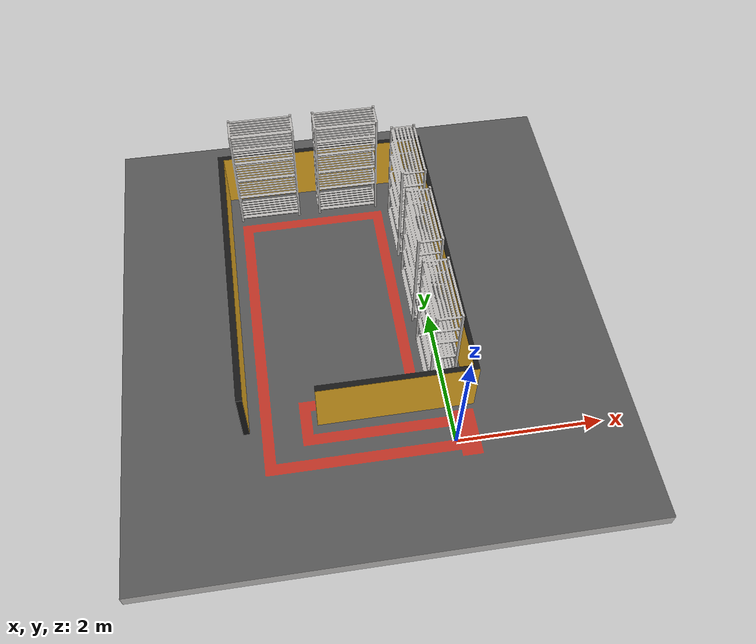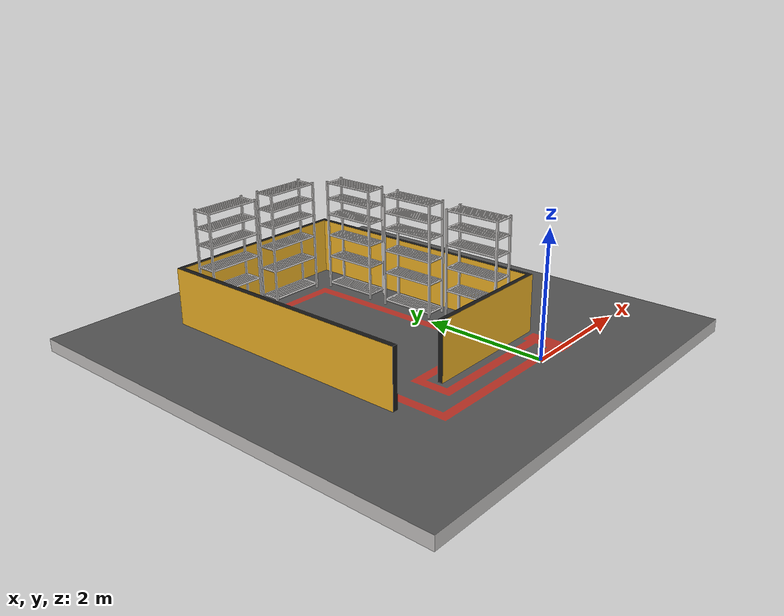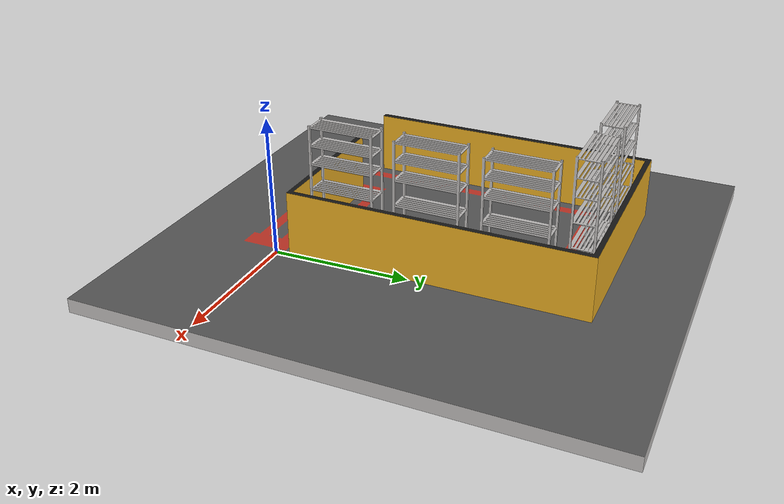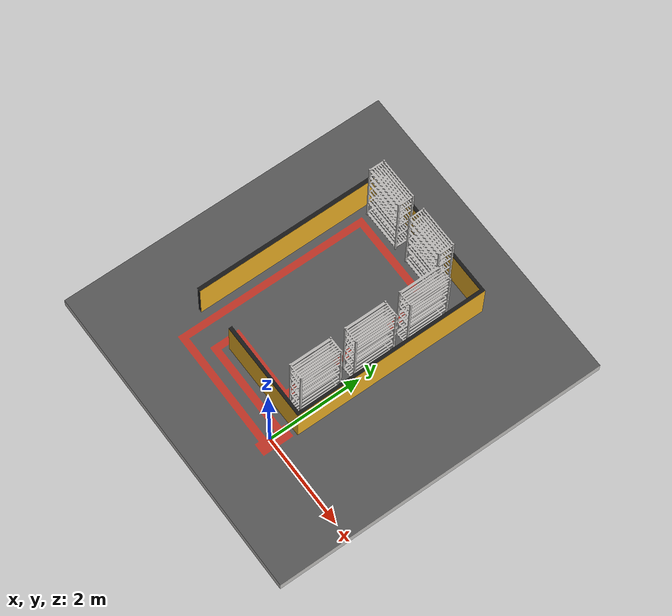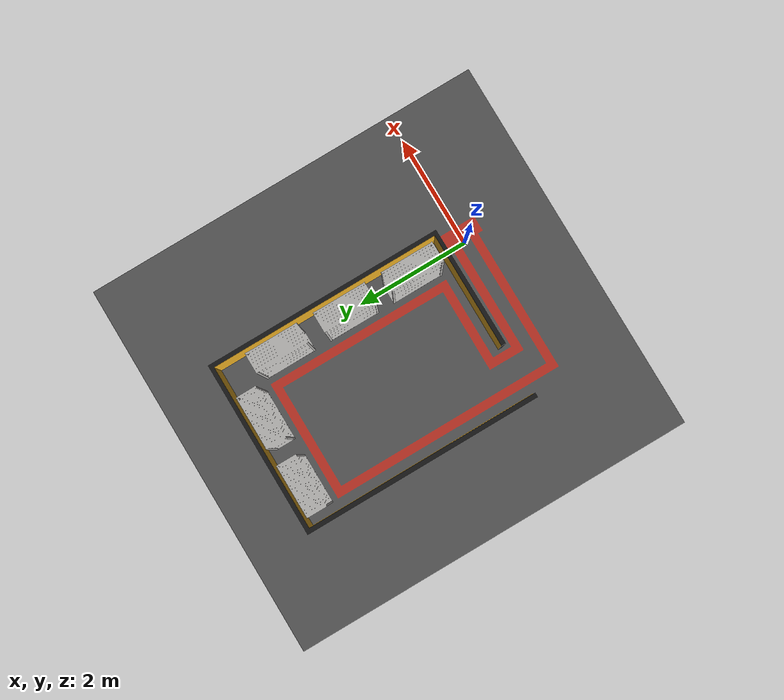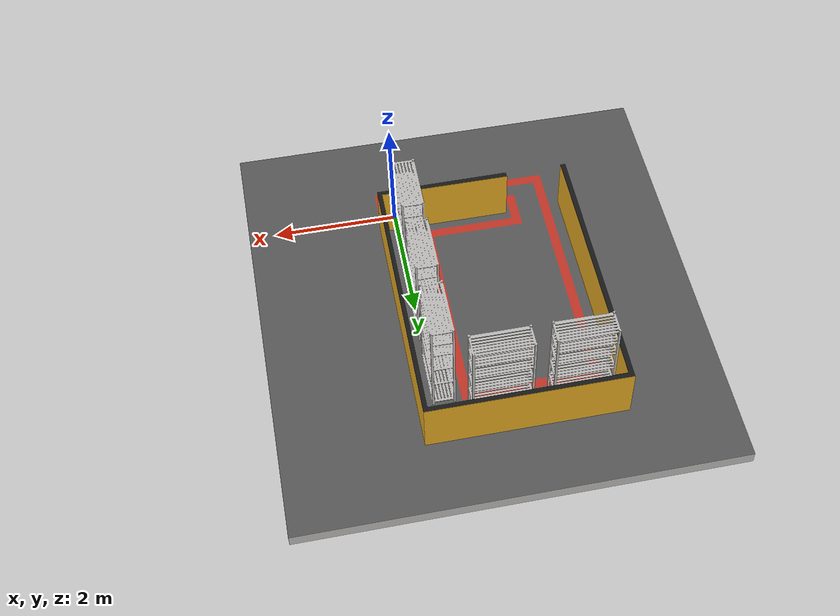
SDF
<sdf version='1.11'>
  <world name="default">
    <!-- Plugin for simulating physics -->
    <plugin
      filename="gz-sim-physics-system"
      name="gz::sim::systems::Physics">
    </plugin>

    <!-- Plugin for handling user commands -->
    <plugin
      filename="gz-sim-user-commands-system"
      name="gz::sim::systems::UserCommands">
    </plugin>

    <!-- Plugin for broadcasting scene updates -->
    <plugin
      filename="gz-sim-scene-broadcaster-system"
      name="gz::sim::systems::SceneBroadcaster">
    </plugin>

    <!-- Plugin for handling sensors like the LIDAR -->
    <plugin
      filename="gz-sim-sensors-system"
      name="gz::sim::systems::Sensors">
      <render_engine>ogre2</render_engine>
    </plugin>

    <!-- Plugin for IMU -->
    <plugin filename="gz-sim-imu-system"
      name="gz::sim::systems::Imu">
    </plugin>

    <scene>
      <ambient>0.5 0.5 0.5 1</ambient>
      <background>0.5 0.5 0.5 1</background>
    </scene>

    <model name='worldEternal'>
      <static>true</static>
      <link name='arena'>
        <collision name='arena_collision_collision'>
          <pose>-0.975 2.075 0 -1.59 0 0</pose>
          <geometry>
            <mesh>
              <scale>0.001 0.001 0.001</scale>
              <uri>meshes/arena.dae</uri>
            </mesh>
          </geometry>
        </collision>

        <visual name='arena_visual_visual'>
          <pose>-0.975 2.075 0 -1.59 0 0</pose>
          <geometry>
            <mesh>
              <scale>0.001 0.001 0.001</scale>
              <uri>meshes/arena.dae</uri>
            </mesh>
          </geometry>
        </visual>
      </link>
    </model>

    <!-- Sun with NO shadows -->
    <light type="directional" name="sun">
      <cast_shadows>false</cast_shadows>
      <pose>1 0 5 0 0 0</pose>
      <diffuse>1 1 1 1</diffuse>
      <specular>0 0 0 1</specular>
      <attenuation>
        <range>1000</range>
        <constant>1.0</constant>
        <linear>0.0</linear>
        <quadratic>0.0</quadratic>
      </attenuation>
      <direction>-0.5 0.1 -0.9</direction>
    </light>

  </world>
</sdf>
